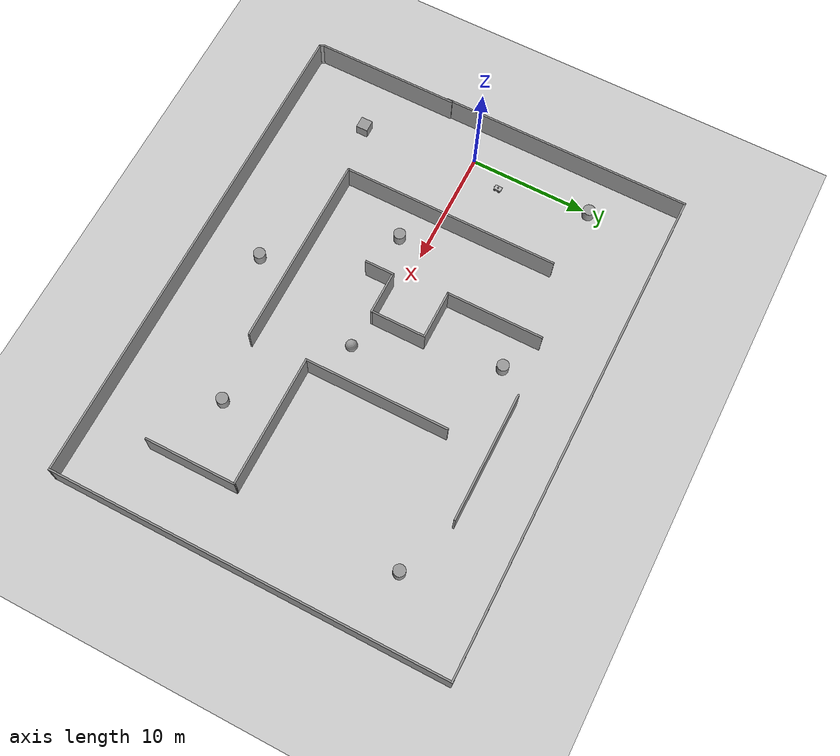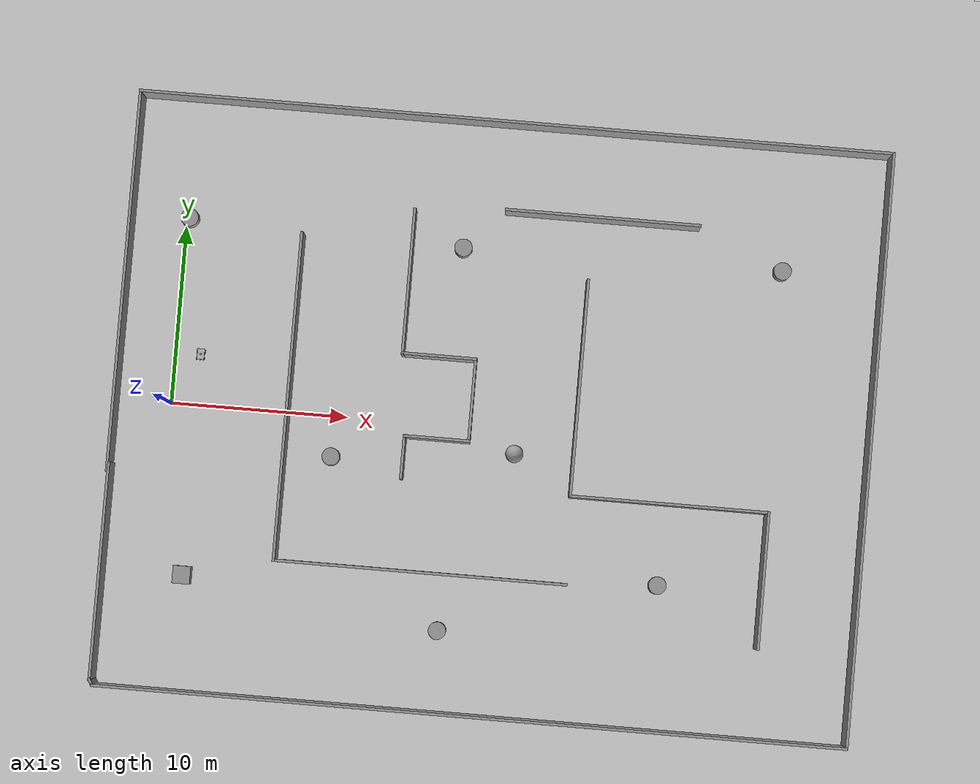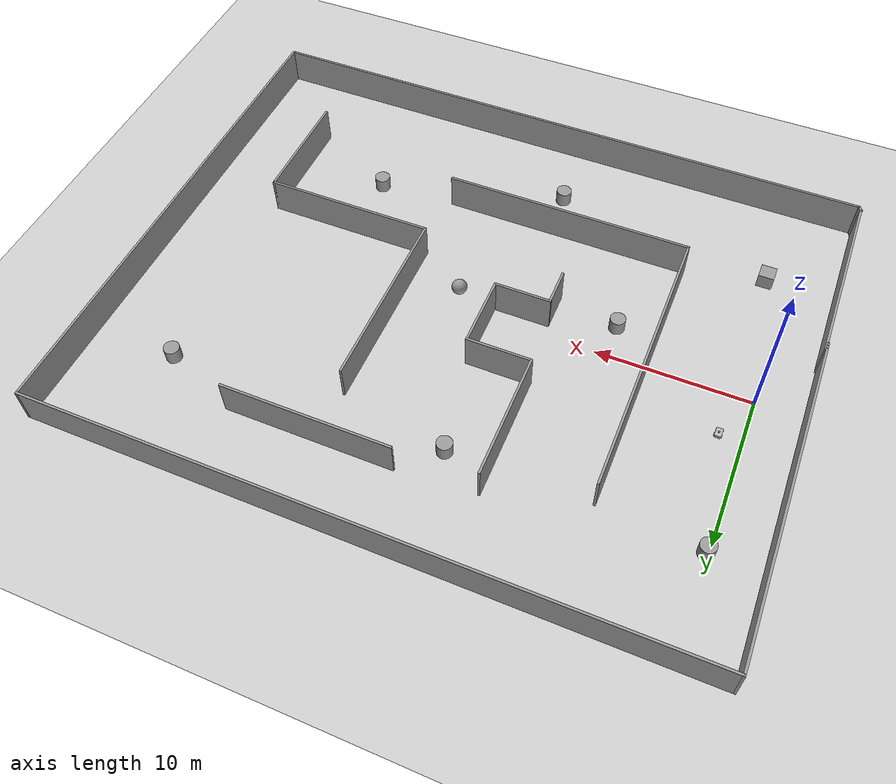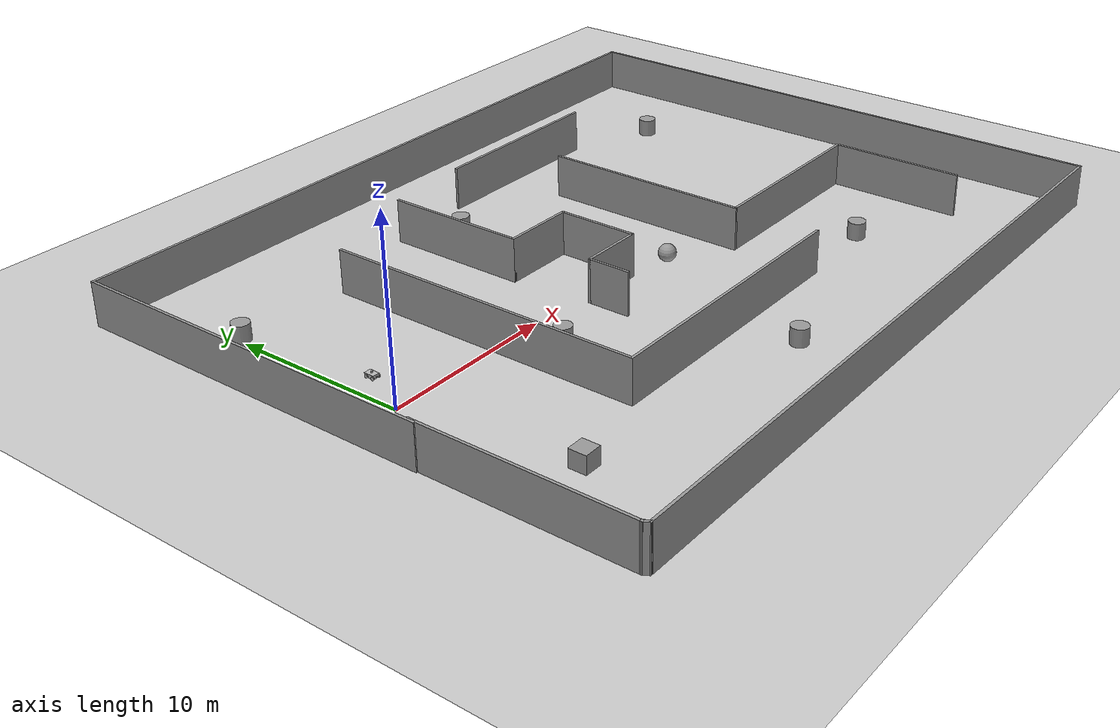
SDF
<sdf version="1.7">
 <world name="default">
  <light name="sun" type="directional">
   <pose>0 0 10 0 -0 0</pose>
   <diffuse>0.8 0.8 0.8 1</diffuse>
   <specular>0.2 0.2 0.2 1</specular>
   <attenuation>
    <range>1000</range>
    <constant>0.9</constant>
    <linear>0.01</linear>
    <quadratic>0.001</quadratic>
   </attenuation>
   <direction>-0.5 0.1 -0.9</direction>
   <spot><inner_angle>0</inner_angle><outer_angle>0</outer_angle><falloff>0</falloff></spot>
  </light>
  <model name="ground_plane">
   <static>1</static>
   <link name="link">
    <collision name="collision">
     <geometry><plane><normal>0 0 1</normal><size>100 100</size></plane></geometry>
     <surface><friction><ode><mu>100</mu><mu2>50</mu2></ode></friction></surface>
    </collision>
    <visual name="visual">
     <cast_shadows>0</cast_shadows>
     <geometry><plane><normal>0 0 1</normal><size>100 100</size></plane></geometry>
     <material>
      <script><uri>file://media/materials/scripts/gazebo.material</uri><name>Gazebo/Grey</name></script>
     </material>
    </visual>
   </link>
  </model>
  <gravity>0 0 -9.8</gravity>
  <magnetic_field>6e-06 2.3e-05 -4.2e-05</magnetic_field>
  <atmosphere type="adiabatic"/>
  <physics type="ode">
   <max_step_size>0.001</max_step_size>
   <real_time_factor>1</real_time_factor>
   <real_time_update_rate>1000</real_time_update_rate>
  </physics>
  <scene><ambient>0.4 0.4 0.4 1</ambient><background>0.7 0.7 0.7 1</background><shadows>1</shadows></scene>
  <audio><device>default</device></audio>
  <spherical_coordinates>
   <surface_model>EARTH_WGS84</surface_model>
   <latitude_deg>0</latitude_deg>
   <longitude_deg>0</longitude_deg>
   <elevation>0</elevation>
   <heading_deg>0</heading_deg>
  </spherical_coordinates>
  <model name="robot_with_sensors">
   <link name="base_footprint">
    <inertial>
     <pose>0.165714 0 0.169156 0 -0 0</pose>
     <mass>15.4</mass>
     <inertia>
      <ixx>0.517299</ixx>
      <ixy>0</ixy>
      <ixz>0.0472857</ixz>
      <iyy>0.333636</iyy>
      <iyz>0</iyz>
      <izz>0.718537</izz>
     </inertia>
    </inertial>
    <collision name="base_footprint_fixed_joint_lump__base_link_collision">
     <pose>0 0 0.2 0 -0 0</pose>
     <geometry><box><size>0.6 0.4 0.2</size></box></geometry>
    </collision>
    <collision name="base_footprint_fixed_joint_lump__caster_wheel_collision_1">
     <pose>0.2 0 0.15 0 -0 0</pose>
     <geometry><sphere><radius>0.05</radius></sphere></geometry>
    </collision>
    <collision name="base_footprint_fixed_joint_lump__front_left_wheel_collision_2">
     <pose>0.25 0.2 0.15 1.57 -0 0</pose>
     <geometry><cylinder><length>0.05</length><radius>0.1</radius></cylinder></geometry>
    </collision>
    <collision name="base_footprint_fixed_joint_lump__front_right_wheel_collision_3">
     <pose>0.25 -0.2 0.15 1.57 -0 0</pose>
     <geometry><cylinder><length>0.05</length><radius>0.1</radius></cylinder></geometry>
    </collision>
    <collision name="base_footprint_fixed_joint_lump__camera_link_collision_4">
     <pose>0.32 0 0.2 0 -0 0</pose>
     <geometry><box><size>0.1 0.05 0.05</size></box></geometry>
    </collision>
    <collision name="base_footprint_fixed_joint_lump__lidar_link_collision_5">
     <pose>0 0 0.35 0 -0 0</pose>
     <geometry><cylinder><length>0.1</length><radius>0.05</radius></cylinder></geometry>
    </collision>
    <visual name="base_footprint_fixed_joint_lump__base_link_visual">
     <pose>0 0 0.2 0 -0 0</pose>
     <geometry><box><size>0.6 0.4 0.2</size></box></geometry>
    </visual>
    <visual name="base_footprint_fixed_joint_lump__caster_wheel_visual_1">
     <pose>0.2 0 0.15 0 -0 0</pose>
     <geometry><sphere><radius>0.05</radius></sphere></geometry>
    </visual>
    <visual name="base_footprint_fixed_joint_lump__front_left_wheel_visual_2">
     <pose>0.25 0.2 0.15 1.57 -0 0</pose>
     <geometry><cylinder><length>0.05</length><radius>0.1</radius></cylinder></geometry>
    </visual>
    <visual name="base_footprint_fixed_joint_lump__front_right_wheel_visual_3">
     <pose>0.25 -0.2 0.15 1.57 -0 0</pose>
     <geometry><cylinder><length>0.05</length><radius>0.1</radius></cylinder></geometry>
    </visual>
    <visual name="base_footprint_fixed_joint_lump__camera_link_visual_4">
     <pose>0.32 0 0.2 0 -0 0</pose>
     <geometry><box><size>0.1 0.05 0.05</size></box></geometry>
    </visual>
    <visual name="base_footprint_fixed_joint_lump__lidar_link_visual_5">
     <pose>0 0 0.35 0 -0 0</pose>
     <geometry><cylinder><length>0.1</length><radius>0.05</radius></cylinder></geometry>
    </visual>
    <sensor name="camera1" type="camera">
     <camera>
      <horizontal_fov>1.39626</horizontal_fov>
      <image><width>1280</width><height>720</height><format>R8G8B8</format></image>
      <clip><near>0.1</near><far>100</far></clip>
     </camera>
     <always_on>1</always_on>
     <update_rate>30</update_rate>
     <visualize>1</visualize>
     <plugin name="camera_controller" filename="libgazebo_ros_camera.so">
      <camera_name>camera</camera_name>
      <frame_name>camera_link</frame_name>
     </plugin>
     <pose>0.32 0 0.2 0 -0 0</pose>
    </sensor>
    <sensor name="velodyne" type="ray">
     <ray>
      <scan>
       <horizontal>
        <samples>1800</samples>
        <resolution>1</resolution>
        <min_angle>-3.14159</min_angle>
        <max_angle>3.14159</max_angle>
       </horizontal>
       <vertical><samples>1</samples><min_angle>0</min_angle><max_angle>0</max_angle></vertical>
      </scan>
      <range><min>0.1</min><max>100</max><resolution>0.01</resolution></range>
     </ray>
     <always_on>1</always_on>
     <update_rate>10</update_rate>
     <visualize>0</visualize>
     <plugin name="gazebo_ros_laser_controller" filename="libgazebo_ros_ray_sensor.so">
      <topic_name>scan</topic_name>
      <frame_name>lidar_link</frame_name>
     </plugin>
     <pose>0 0 0.35 0 -0 0</pose>
    </sensor>
   </link>
   <joint name="base_left_wheel_joint" type="revolute">
    <pose relative_to="base_footprint">-0.15 0.225 0.15 0 -0 0</pose>
    <parent>base_footprint</parent>
    <child>left_wheel</child>
    <axis>
     <xyz>0 1 0</xyz>
     <limit><lower>-1e+16</lower><upper>1e+16</upper></limit>
     <dynamics><spring_reference>0</spring_reference><spring_stiffness>0</spring_stiffness></dynamics>
    </axis>
   </joint>
   <link name="left_wheel">
    <pose relative_to="base_left_wheel_joint">0 0 0 0 -0 0</pose>
    <inertial>
     <mass>0.2</mass>
     <inertia><ixx>0.001</ixx><ixy>0</ixy><ixz>0</ixz><iyy>0.001</iyy><iyz>0</iyz><izz>0.001</izz></inertia>
    </inertial>
    <collision name="left_wheel_collision">
     <pose>0 0 0 1.57 -0 0</pose>
     <geometry><cylinder><length>0.05</length><radius>0.1</radius></cylinder></geometry>
    </collision>
    <visual name="left_wheel_visual">
     <pose>0 0 0 1.57 -0 0</pose>
     <geometry><cylinder><length>0.05</length><radius>0.1</radius></cylinder></geometry>
    </visual>
   </link>
   <joint name="base_right_wheel_joint" type="revolute">
    <pose relative_to="base_footprint">-0.15 -0.225 0.15 0 -0 0</pose>
    <parent>base_footprint</parent>
    <child>right_wheel</child>
    <axis>
     <xyz>0 1 0</xyz>
     <limit><lower>-1e+16</lower><upper>1e+16</upper></limit>
     <dynamics><spring_reference>0</spring_reference><spring_stiffness>0</spring_stiffness></dynamics>
    </axis>
   </joint>
   <link name="right_wheel">
    <pose relative_to="base_right_wheel_joint">0 0 0 0 -0 0</pose>
    <inertial>
     <mass>0.2</mass>
     <inertia><ixx>0.001</ixx><ixy>0</ixy><ixz>0</ixz><iyy>0.001</iyy><iyz>0</iyz><izz>0.001</izz></inertia>
    </inertial>
    <collision name="right_wheel_collision">
     <pose>0 0 0 1.57 -0 0</pose>
     <geometry><cylinder><length>0.05</length><radius>0.1</radius></cylinder></geometry>
    </collision>
    <visual name="right_wheel_visual">
     <pose>0 0 0 1.57 -0 0</pose>
     <geometry><cylinder><length>0.05</length><radius>0.1</radius></cylinder></geometry>
    </visual>
   </link>
   <pose>1.43651 2.89144 -0.049985 -1.6e-05 -8e-06 -1.60431</pose>
  </model>
  <model name="maze">
   <pose>18.155 0.541275 0 0 -0 0</pose>
   <link name="Wall_0">
    <collision name="Wall_0_Collision">
     <geometry><box><size>21.5 0.15 2.5</size></box></geometry>
     <pose>0 0 1.25 0 -0 0</pose>
    </collision>
    <visual name="Wall_0_Visual">
     <pose>0 0 1.25 0 -0 0</pose>
     <geometry><box><size>21.5 0.15 2.5</size></box></geometry>
     <material>
      <script><uri>file://media/materials/scripts/gazebo.material</uri><name>Gazebo/Grey</name></script>
      <ambient>1 1 1 1</ambient>
     </material>
     <meta><layer>0</layer></meta>
    </visual>
    <pose>-21.175 6.01372 0 0 -0 1.5708</pose>
   </link>
   <link name="Wall_1">
    <collision name="Wall_1_Collision">
     <geometry><box><size>42.5 0.15 2.5</size></box></geometry>
     <pose>0 0 1.25 0 -0 0</pose>
    </collision>
    <visual name="Wall_1_Visual">
     <pose>0 0 1.25 0 -0 0</pose>
     <geometry><box><size>42.5 0.15 2.5</size></box></geometry>
     <material>
      <script><uri>file://media/materials/scripts/gazebo.material</uri><name>Gazebo/Grey</name></script>
      <ambient>1 1 1 1</ambient>
     </material>
     <meta><layer>0</layer></meta>
    </visual>
    <pose>0 16.6887 0 0 -0 0</pose>
   </link>
   <link name="Wall_10">
    <collision name="Wall_10_Collision">
     <geometry><box><size>16.5 0.15 2.5</size></box></geometry>
     <pose>0 0 1.25 0 -0 0</pose>
    </collision>
    <visual name="Wall_10_Visual">
     <pose>0 0 1.25 0 -0 0</pose>
     <geometry><box><size>16.5 0.15 2.5</size></box></geometry>
     <material>
      <script><uri>file://media/materials/scripts/gazebo.material</uri><name>Gazebo/Grey</name></script>
      <ambient>1 1 1 1</ambient>
     </material>
     <meta><layer>0</layer></meta>
    </visual>
    <pose>-3.30445 -8.88751 0 0 -0 0</pose>
   </link>
   <link name="Wall_12">
    <collision name="Wall_12_Collision">
     <geometry><box><size>12.25 0.15 2.5</size></box></geometry>
     <pose>0 0 1.25 0 -0 0</pose>
    </collision>
    <visual name="Wall_12_Visual">
     <pose>0 0 1.25 0 -0 0</pose>
     <geometry><box><size>12.25 0.15 2.5</size></box></geometry>
     <material>
      <script><uri>file://media/materials/scripts/gazebo.material</uri><name>Gazebo/Grey</name></script>
      <ambient>1 1 1 1</ambient>
     </material>
     <meta><layer>0</layer></meta>
    </visual>
    <pose>4.7133 2.11056 0 0 -0 -1.5708</pose>
   </link>
   <link name="Wall_13">
    <collision name="Wall_13_Collision">
     <geometry><box><size>11.25 0.15 2.5</size></box></geometry>
     <pose>0 0 1.25 0 -0 0</pose>
    </collision>
    <visual name="Wall_13_Visual">
     <pose>0 0 1.25 0 -0 0</pose>
     <geometry><box><size>11.25 0.15 2.5</size></box></geometry>
     <material>
      <script><uri>file://media/materials/scripts/gazebo.material</uri><name>Gazebo/Grey</name></script>
      <ambient>1 1 1 1</ambient>
     </material>
     <meta><layer>0</layer></meta>
    </visual>
    <pose>10.2633 -3.93944 0 0 -0 0</pose>
   </link>
   <link name="Wall_14">
    <collision name="Wall_14_Collision">
     <geometry><box><size>7.75 0.15 2.5</size></box></geometry>
     <pose>0 0 1.25 0 -0 0</pose>
    </collision>
    <visual name="Wall_14_Visual">
     <pose>0 0 1.25 0 -0 0</pose>
     <geometry><box><size>7.75 0.15 2.5</size></box></geometry>
     <material>
      <script><uri>file://media/materials/scripts/gazebo.material</uri><name>Gazebo/Grey</name></script>
      <ambient>1 1 1 1</ambient>
     </material>
     <meta><layer>0</layer></meta>
    </visual>
    <pose>15.8133 -7.73944 0 0 -0 -1.5708</pose>
   </link>
   <link name="Wall_17">
    <collision name="Wall_17_Collision">
     <geometry><box><size>8.25 0.15 2.5</size></box></geometry>
     <pose>0 0 1.25 0 -0 0</pose>
    </collision>
    <visual name="Wall_17_Visual">
     <pose>0 0 1.25 0 -0 0</pose>
     <geometry><box><size>8.25 0.15 2.5</size></box></geometry>
     <material>
      <script><uri>file://media/materials/scripts/gazebo.material</uri><name>Gazebo/Grey</name></script>
      <ambient>1 1 1 1</ambient>
     </material>
     <meta><layer>0</layer></meta>
    </visual>
    <pose>-5.29528 7.28402 0 0 -0 -1.5708</pose>
   </link>
   <link name="Wall_18">
    <collision name="Wall_18_Collision">
     <geometry><box><size>4.25 0.15 2.5</size></box></geometry>
     <pose>0 0 1.25 0 -0 0</pose>
    </collision>
    <visual name="Wall_18_Visual">
     <pose>0 0 1.25 0 -0 0</pose>
     <geometry><box><size>4.25 0.15 2.5</size></box></geometry>
     <material>
      <script><uri>file://media/materials/scripts/gazebo.material</uri><name>Gazebo/Grey</name></script>
      <ambient>1 1 1 1</ambient>
     </material>
     <meta><layer>0</layer></meta>
    </visual>
    <pose>-3.24528 3.23402 0 0 -0 0</pose>
   </link>
   <link name="Wall_19">
    <collision name="Wall_19_Collision">
     <geometry><box><size>4.75 0.15 2.5</size></box></geometry>
     <pose>0 0 1.25 0 -0 0</pose>
    </collision>
    <visual name="Wall_19_Visual">
     <pose>0 0 1.25 0 -0 0</pose>
     <geometry><box><size>4.75 0.15 2.5</size></box></geometry>
     <material>
      <script><uri>file://media/materials/scripts/gazebo.material</uri><name>Gazebo/Grey</name></script>
      <ambient>1 1 1 1</ambient>
     </material>
     <meta><layer>0</layer></meta>
    </visual>
    <pose>-1.19528 0.934017 0 0 -0 -1.5708</pose>
   </link>
   <link name="Wall_2">
    <collision name="Wall_2_Collision">
     <geometry><box><size>33.5 0.15 2.5</size></box></geometry>
     <pose>0 0 1.25 0 -0 0</pose>
    </collision>
    <visual name="Wall_2_Visual">
     <pose>0 0 1.25 0 -0 0</pose>
     <geometry><box><size>33.5 0.15 2.5</size></box></geometry>
     <material>
      <script><uri>file://media/materials/scripts/gazebo.material</uri><name>Gazebo/Grey</name></script>
      <ambient>1 1 1 1</ambient>
     </material>
     <meta><layer>0</layer></meta>
    </visual>
    <pose>21.175 0.013725 0 0 -0 -1.5708</pose>
   </link>
   <link name="Wall_20">
    <collision name="Wall_20_Collision">
     <geometry><box><size>3.75 0.15 2.5</size></box></geometry>
     <pose>0 0 1.25 0 -0 0</pose>
    </collision>
    <visual name="Wall_20_Visual">
     <pose>0 0 1.25 0 -0 0</pose>
     <geometry><box><size>3.75 0.15 2.5</size></box></geometry>
     <material>
      <script><uri>file://media/materials/scripts/gazebo.material</uri><name>Gazebo/Grey</name></script>
      <ambient>1 1 1 1</ambient>
     </material>
     <meta><layer>0</layer></meta>
    </visual>
    <pose>-2.99528 -1.36598 0 0 -0 3.14159</pose>
   </link>
   <link name="Wall_21">
    <collision name="Wall_21_Collision">
     <geometry><box><size>2.5 0.15 2.5</size></box></geometry>
     <pose>0 0 1.25 0 -0 0</pose>
    </collision>
    <visual name="Wall_21_Visual">
     <pose>0 0 1.25 0 -0 0</pose>
     <geometry><box><size>2.5 0.15 2.5</size></box></geometry>
     <material>
      <script><uri>file://media/materials/scripts/gazebo.material</uri><name>Gazebo/Grey</name></script>
      <ambient>1 1 1 1</ambient>
     </material>
     <meta><layer>0</layer></meta>
    </visual>
    <pose>-4.79528 -2.54098 0 0 -0 -1.5708</pose>
   </link>
   <link name="Wall_3">
    <collision name="Wall_3_Collision">
     <geometry><box><size>42.25 0.15 2.5</size></box></geometry>
     <pose>0 0 1.25 0 -0 0</pose>
    </collision>
    <visual name="Wall_3_Visual">
     <pose>0 0 1.25 0 -0 0</pose>
     <geometry><box><size>42.25 0.15 2.5</size></box></geometry>
     <material>
      <script><uri>file://media/materials/scripts/gazebo.material</uri><name>Gazebo/Grey</name></script>
      <ambient>1 1 1 1</ambient>
     </material>
     <meta><layer>0</layer></meta>
    </visual>
    <pose>0.125 -16.6613 0 0 -0 3.14159</pose>
   </link>
   <link name="Wall_4">
    <collision name="Wall_4_Collision">
     <geometry><box><size>0.5 0.15 2.5</size></box></geometry>
     <pose>0 0 1.25 0 -0 0</pose>
    </collision>
    <visual name="Wall_4_Visual">
     <pose>0 0 1.25 0 -0 0</pose>
     <geometry><box><size>0.5 0.15 2.5</size></box></geometry>
     <material>
      <script><uri>file://media/materials/scripts/gazebo.material</uri><name>Gazebo/Grey</name></script>
      <ambient>1 1 1 1</ambient>
     </material>
     <meta><layer>0</layer></meta>
    </visual>
    <pose>-21.0125 -16.5097 0 0 -0 2.0944</pose>
   </link>
   <link name="Wall_5">
    <collision name="Wall_5_Collision">
     <geometry><box><size>12.25 0.15 2.5</size></box></geometry>
     <pose>0 0 1.25 0 -0 0</pose>
    </collision>
    <visual name="Wall_5_Visual">
     <pose>0 0 1.25 0 -0 0</pose>
     <geometry><box><size>12.25 0.15 2.5</size></box></geometry>
     <material>
      <script><uri>file://media/materials/scripts/gazebo.material</uri><name>Gazebo/Grey</name></script>
      <ambient>1 1 1 1</ambient>
     </material>
     <meta><layer>0</layer></meta>
    </visual>
    <pose>-21.1 -10.3082 0 0 -0 1.5708</pose>
   </link>
   <link name="Wall_7">
    <collision name="Wall_7_Collision">
     <geometry><box><size>11 0.15 2.5</size></box></geometry>
     <pose>0 0 1.25 0 -0 0</pose>
    </collision>
    <visual name="Wall_7_Visual">
     <pose>0 0 1.25 0 -0 0</pose>
     <geometry><box><size>11 0.15 2.5</size></box></geometry>
     <material>
      <script><uri>file://media/materials/scripts/gazebo.material</uri><name>Gazebo/Grey</name></script>
      <ambient>1 1 1 1</ambient>
     </material>
     <meta><layer>0</layer></meta>
    </visual>
    <pose>5.25607 11.7409 0 0 -0 0</pose>
   </link>
   <link name="Wall_9">
    <collision name="Wall_9_Collision">
     <geometry><box><size>18.5 0.15 2.5</size></box></geometry>
     <pose>0 0 1.25 0 -0 0</pose>
    </collision>
    <visual name="Wall_9_Visual">
     <pose>0 0 1.25 0 -0 0</pose>
     <geometry><box><size>18.5 0.15 2.5</size></box></geometry>
     <material>
      <script><uri>file://media/materials/scripts/gazebo.material</uri><name>Gazebo/Grey</name></script>
      <ambient>1 1 1 1</ambient>
     </material>
     <meta><layer>0</layer></meta>
    </visual>
    <pose>-11.4795 0.287493 0 0 -0 -1.5708</pose>
   </link>
   <static>1</static>
  </model>
  <model name="unit_cylinder">
   <pose>9.28879 -2.28598 0.499998 3e-06 -4e-06 0</pose>
   <link name="link">
    <inertial>
     <mass>1</mass>
     <inertia><ixx>0.145833</ixx><ixy>0</ixy><ixz>0</ixz><iyy>0.145833</iyy><iyz>0</iyz><izz>0.125</izz></inertia>
    </inertial>
    <collision name="collision">
     <geometry><cylinder><radius>0.5</radius><length>1</length></cylinder></geometry>
    </collision>
    <visual name="visual">
     <geometry><cylinder><radius>0.5</radius><length>1</length></cylinder></geometry>
     <material>
      <script><name>Gazebo/Grey</name><uri>file://media/materials/scripts/gazebo.material</uri></script>
     </material>
    </visual>
   </link>
  </model>
  <model name="unit_cylinder_0">
   <pose>33.7689 10.2613 0.499992 -3e-06 4e-06 0</pose>
   <link name="link">
    <inertial>
     <mass>1</mass>
     <inertia><ixx>0.145833</ixx><ixy>0</ixy><ixz>0</ixz><iyy>0.145833</iyy><iyz>0</iyz><izz>0.125</izz></inertia>
    </inertial>
    <collision name="collision">
     <geometry><cylinder><radius>0.5</radius><length>1</length></cylinder></geometry>
    </collision>
    <visual name="visual">
     <geometry><cylinder><radius>0.5</radius><length>1</length></cylinder></geometry>
     <material>
      <script><name>Gazebo/Grey</name><uri>file://media/materials/scripts/gazebo.material</uri></script>
     </material>
    </visual>
   </link>
  </model>
  <model name="unit_cylinder_1">
   <pose>28.1856 -7.96961 0.499998 3e-06 -4e-06 0</pose>
   <link name="link">
    <inertial>
     <mass>1</mass>
     <inertia><ixx>0.145833</ixx><ixy>0</ixy><ixz>0</ixz><iyy>0.145833</iyy><iyz>0</iyz><izz>0.125</izz></inertia>
    </inertial>
    <collision name="collision">
     <geometry><cylinder><radius>0.5</radius><length>1</length></cylinder></geometry>
    </collision>
    <visual name="visual">
     <geometry><cylinder><radius>0.5</radius><length>1</length></cylinder></geometry>
     <material>
      <script><name>Gazebo/Grey</name><uri>file://media/materials/scripts/gazebo.material</uri></script>
     </material>
    </visual>
   </link>
  </model>
  <model name="unit_box">
   <pose>1.50561 -9.6071 0.499995 0 1e-05 0</pose>
   <link name="link">
    <inertial>
     <mass>1</mass>
     <inertia>
      <ixx>0.166667</ixx>
      <ixy>0</ixy>
      <ixz>0</ixz>
      <iyy>0.166667</iyy>
      <iyz>0</iyz>
      <izz>0.166667</izz>
     </inertia>
    </inertial>
    <collision name="collision"><geometry><box><size>1 1 1</size></box></geometry></collision>
    <visual name="visual">
     <geometry><box><size>1 1 1</size></box></geometry>
     <material>
      <script><name>Gazebo/Grey</name><uri>file://media/materials/scripts/gazebo.material</uri></script>
     </material>
    </visual>
   </link>
  </model>
  <model name="unit_cylinder_2">
   <pose>15.7312 10.0783 0.499993 -3e-06 -3e-06 0</pose>
   <link name="link">
    <inertial>
     <mass>1</mass>
     <inertia><ixx>0.145833</ixx><ixy>0</ixy><ixz>0</ixz><iyy>0.145833</iyy><iyz>0</iyz><izz>0.125</izz></inertia>
    </inertial>
    <collision name="collision">
     <geometry><cylinder><radius>0.5</radius><length>1</length></cylinder></geometry>
    </collision>
    <visual name="visual">
     <geometry><cylinder><radius>0.5</radius><length>1</length></cylinder></geometry>
     <material>
      <script><name>Gazebo/Grey</name><uri>file://media/materials/scripts/gazebo.material</uri></script>
     </material>
    </visual>
   </link>
  </model>
  <model name="unit_cylinder_3">
   <pose>0.205636 10.4906 0.499997 3e-06 4e-06 -0</pose>
   <link name="link">
    <inertial>
     <mass>1</mass>
     <inertia><ixx>0.145833</ixx><ixy>0</ixy><ixz>0</ixz><iyy>0.145833</iyy><iyz>0</iyz><izz>0.125</izz></inertia>
    </inertial>
    <collision name="collision">
     <geometry><cylinder><radius>0.5</radius><length>1</length></cylinder></geometry>
    </collision>
    <visual name="visual">
     <geometry><cylinder><radius>0.5</radius><length>1</length></cylinder></geometry>
     <material>
      <script><name>Gazebo/Grey</name><uri>file://media/materials/scripts/gazebo.material</uri></script>
     </material>
    </visual>
   </link>
  </model>
  <model name="unit_sphere">
   <pose>19.5651 -1.25575 0.5 0 -0 0</pose>
   <link name="link">
    <inertial>
     <mass>1</mass>
     <inertia><ixx>0.1</ixx><ixy>0</ixy><ixz>0</ixz><iyy>0.1</iyy><iyz>0</iyz><izz>0.1</izz></inertia>
    </inertial>
    <collision name="collision"><geometry><sphere><radius>0.5</radius></sphere></geometry></collision>
    <visual name="visual">
     <geometry><sphere><radius>0.5</radius></sphere></geometry>
     <material>
      <script><name>Gazebo/Grey</name><uri>file://media/materials/scripts/gazebo.material</uri></script>
     </material>
    </visual>
   </link>
  </model>
  <model name="unit_cylinder_4">
   <pose>16.0696 -11.5287 0.499997 3e-06 4e-06 -0</pose>
   <link name="link">
    <inertial>
     <mass>1</mass>
     <inertia><ixx>0.145833</ixx><ixy>0</ixy><ixz>0</ixz><iyy>0.145833</iyy><iyz>0</iyz><izz>0.125</izz></inertia>
    </inertial>
    <collision name="collision">
     <geometry><cylinder><radius>0.5</radius><length>1</length></cylinder></geometry>
    </collision>
    <visual name="visual">
     <geometry><cylinder><radius>0.5</radius><length>1</length></cylinder></geometry>
     <material>
      <script><name>Gazebo/Grey</name><uri>file://media/materials/scripts/gazebo.material</uri></script>
     </material>
    </visual>
   </link>
  </model>
 </world>
</sdf>
